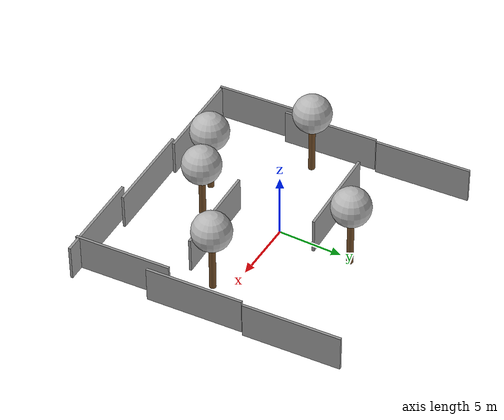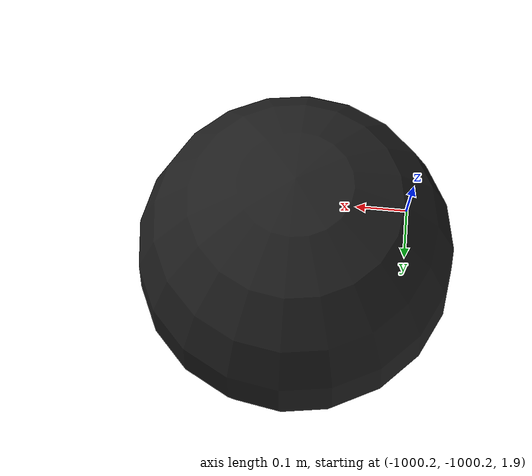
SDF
<sdf version="1.7">
 <world name="default">
  <plugin name="mrs_gazebo_static_transform_republisher_plugin" filename="libMrsGazeboCommonResources_StaticTransformRepublisher.so"/>
  <spherical_coordinates>
   <surface_model>EARTH_WGS84</surface_model>
   <latitude_deg>47.3977</latitude_deg>
   <longitude_deg>8.54559</longitude_deg>
   <elevation>0</elevation>
   <heading_deg>0</heading_deg>
  </spherical_coordinates>
  <physics name="default_physics" default="0" type="ode">
   <ode>
    <solver>
     <type>quick</type>
     <iters>10</iters>
     <sor>1.3</sor>
     <use_dynamic_moi_rescaling>0</use_dynamic_moi_rescaling>
    </solver>
    <constraints>
     <cfm>0</cfm>
     <erp>0.2</erp>
     <contact_max_correcting_vel>1000</contact_max_correcting_vel>
     <contact_surface_layer>0.001</contact_surface_layer>
    </constraints>
   </ode>
   <max_step_size>0.004</max_step_size>
   <real_time_factor>1</real_time_factor>
   <real_time_update_rate>250</real_time_update_rate>
  </physics>
  <scene><shadows>0</shadows><ambient>0.4 0.4 0.4 1</ambient><background>0.7 0.7 0.7 1</background></scene>
  <light name="sun" type="directional">
   <pose>0 0 1000 0.4 0.2 0</pose>
   <diffuse>1 1 1 1</diffuse>
   <specular>0.6 0.6 0.6 1</specular>
   <direction>0.1 0.1 -0.9</direction>
   <attenuation>
    <range>20</range>
    <constant>0.5</constant>
    <linear>0.01</linear>
    <quadratic>0.001</quadratic>
   </attenuation>
   <spot><inner_angle>0</inner_angle><outer_angle>0</outer_angle><falloff>0</falloff></spot>
  </light>
  <model name="the_void">
   <static>1</static>
   <link name="link">
    <pose>0 0 0.1 0 -0 0</pose>
    <visual name="the_void">
     <pose>0 0 2 0 -0 0</pose>
     <geometry><sphere><radius>0.25</radius></sphere></geometry>
     <material>
      <script><uri>file://media/materials/scripts/Gazebo.material</uri><name>Gazebo/Black</name></script>
     </material>
    </visual>
   </link>
   <pose>-1000 -1000 0 0 -0 0</pose>
  </model>
  <plugin name="mrs_gazebo_rviz_cam_synchronizer" filename="libMrsGazeboCommonResources_RvizCameraSynchronizer.so">
   <target_frame_id>gazebo_user_camera</target_frame_id>
   <world_origin_frame_id>uav1/gps_origin</world_origin_frame_id>
   <frame_to_follow>uav1</frame_to_follow>
  </plugin>
  <gravity>0 0 -9.8066</gravity>
  <magnetic_field>6e-06 2.3e-05 -4.2e-05</magnetic_field>
  <atmosphere type="adiabatic"/>
  <model name="grey_wall">
   <static>1</static>
   <link name="link">
    <pose>0 0 1.4 0 -0 0</pose>
    <collision name="collision"><geometry><box><size>7.5 0.2 2.8</size></box></geometry></collision>
    <visual name="visual">
     <cast_shadows>0</cast_shadows>
     <geometry><box><size>7.5 0.2 2.8</size></box></geometry>
     <material>
      <script>
       <uri>model://grey_wall/materials/scripts</uri>
       <uri>model://grey_wall/materials/textures</uri>
       <name>vrc/grey_wall</name>
      </script>
     </material>
    </visual>
   </link>
   <pose>10.3873 6.81267 0.006189 0 0 -1.51407</pose>
  </model>
  <model name="grey_wall_clone">
   <static>1</static>
   <link name="link">
    <pose>0 0 1.4 0 -0 0</pose>
    <collision name="collision"><geometry><box><size>7.5 0.2 2.8</size></box></geometry></collision>
    <visual name="visual">
     <cast_shadows>0</cast_shadows>
     <geometry><box><size>7.5 0.2 2.8</size></box></geometry>
     <material>
      <script>
       <uri>model://grey_wall/materials/scripts</uri>
       <uri>model://grey_wall/materials/textures</uri>
       <name>vrc/grey_wall</name>
      </script>
     </material>
    </visual>
   </link>
   <pose>10.5648 -0.861642 0.006189 0 0 -1.51407</pose>
  </model>
  <model name="grey_wall_clone_0">
   <static>1</static>
   <link name="link">
    <pose>0 0 1.4 0 -0 0</pose>
    <collision name="collision"><geometry><box><size>7.5 0.2 2.8</size></box></geometry></collision>
    <visual name="visual">
     <cast_shadows>0</cast_shadows>
     <geometry><box><size>7.5 0.2 2.8</size></box></geometry>
     <material>
      <script>
       <uri>model://grey_wall/materials/scripts</uri>
       <uri>model://grey_wall/materials/textures</uri>
       <name>vrc/grey_wall</name>
      </script>
     </material>
    </visual>
   </link>
   <pose>-9.82204 6.55075 0.006189 0 0 -1.51407</pose>
  </model>
  <model name="grey_wall_clone_1">
   <static>1</static>
   <link name="link">
    <pose>0 0 1.4 0 -0 0</pose>
    <collision name="collision"><geometry><box><size>7.5 0.2 2.8</size></box></geometry></collision>
    <visual name="visual">
     <cast_shadows>0</cast_shadows>
     <geometry><box><size>7.5 0.2 2.8</size></box></geometry>
     <material>
      <script>
       <uri>model://grey_wall/materials/scripts</uri>
       <uri>model://grey_wall/materials/textures</uri>
       <name>vrc/grey_wall</name>
      </script>
     </material>
    </visual>
   </link>
   <pose>-9.57551 -1.08129 0.006189 0 0 -1.51407</pose>
  </model>
  <model name="grey_wall_clone_2">
   <static>1</static>
   <link name="link">
    <pose>0 0 1.4 0 -0 0</pose>
    <collision name="collision"><geometry><box><size>7.5 0.2 2.8</size></box></geometry></collision>
    <visual name="visual">
     <cast_shadows>0</cast_shadows>
     <geometry><box><size>7.5 0.2 2.8</size></box></geometry>
     <material>
      <script>
       <uri>model://grey_wall/materials/scripts</uri>
       <uri>model://grey_wall/materials/textures</uri>
       <name>vrc/grey_wall</name>
      </script>
     </material>
    </visual>
   </link>
   <pose>-9.83703 -6.99259 0.006189 0 0 -1.51407</pose>
  </model>
  <model name="grey_wall_clone_3">
   <static>1</static>
   <link name="link">
    <pose>0 0 1.4 0 -0 0</pose>
    <collision name="collision"><geometry><box><size>7.5 0.2 2.8</size></box></geometry></collision>
    <visual name="visual">
     <cast_shadows>0</cast_shadows>
     <geometry><box><size>7.5 0.2 2.8</size></box></geometry>
     <material>
      <script>
       <uri>model://grey_wall/materials/scripts</uri>
       <uri>model://grey_wall/materials/textures</uri>
       <name>vrc/grey_wall</name>
      </script>
     </material>
    </visual>
   </link>
   <pose>10.1052 -7.03461 0.006189 0 0 -1.51407</pose>
  </model>
  <model name="grey_wall_clone_4">
   <static>1</static>
   <link name="link">
    <pose>0 0 1.4 0 -0 0</pose>
    <collision name="collision"><geometry><box><size>7.5 0.2 2.8</size></box></geometry></collision>
    <visual name="visual">
     <cast_shadows>0</cast_shadows>
     <geometry><box><size>7.5 0.2 2.8</size></box></geometry>
     <material>
      <script>
       <uri>model://grey_wall/materials/scripts</uri>
       <uri>model://grey_wall/materials/textures</uri>
       <name>vrc/grey_wall</name>
      </script>
     </material>
    </visual>
   </link>
   <pose>-5.70434 -10.3991 0.006189 -0.000123 0.009608 0.043913</pose>
  </model>
  <model name="grey_wall_clone_4_clone">
   <static>1</static>
   <link name="link">
    <pose>0 0 1.4 0 -0 0</pose>
    <collision name="collision"><geometry><box><size>7.5 0.2 2.8</size></box></geometry></collision>
    <visual name="visual">
     <cast_shadows>0</cast_shadows>
     <geometry><box><size>7.5 0.2 2.8</size></box></geometry>
     <material>
      <script>
       <uri>model://grey_wall/materials/scripts</uri>
       <uri>model://grey_wall/materials/textures</uri>
       <name>vrc/grey_wall</name>
      </script>
     </material>
    </visual>
   </link>
   <pose>1.35126 -10.369 0.006189 -0.000123 0.009608 0.043913</pose>
  </model>
  <model name="grey_wall_clone_4_clone_0">
   <static>1</static>
   <link name="link">
    <pose>0 0 1.4 0 -0 0</pose>
    <collision name="collision"><geometry><box><size>7.5 0.2 2.8</size></box></geometry></collision>
    <visual name="visual">
     <cast_shadows>0</cast_shadows>
     <geometry><box><size>7.5 0.2 2.8</size></box></geometry>
     <material>
      <script>
       <uri>model://grey_wall/materials/scripts</uri>
       <uri>model://grey_wall/materials/textures</uri>
       <name>vrc/grey_wall</name>
      </script>
     </material>
    </visual>
   </link>
   <pose>7.87916 -10.6341 0.006189 -0.000123 0.009608 0.043913</pose>
  </model>
  <model name="grey_wall_clone_4_clone_1">
   <static>1</static>
   <link name="link">
    <pose>0 0 1.4 0 -0 0</pose>
    <collision name="collision"><geometry><box><size>7.5 0.2 2.8</size></box></geometry></collision>
    <visual name="visual">
     <cast_shadows>0</cast_shadows>
     <geometry><box><size>7.5 0.2 2.8</size></box></geometry>
     <material>
      <script>
       <uri>model://grey_wall/materials/scripts</uri>
       <uri>model://grey_wall/materials/textures</uri>
       <name>vrc/grey_wall</name>
      </script>
     </material>
    </visual>
   </link>
   <pose>2.98825 -3.6967 0.006189 -0.000123 0.009608 0.043913</pose>
  </model>
  <model name="grey_wall_clone_4_clone_2">
   <static>1</static>
   <link name="link">
    <pose>0 0 1.4 0 -0 0</pose>
    <collision name="collision"><geometry><box><size>7.5 0.2 2.8</size></box></geometry></collision>
    <visual name="visual">
     <cast_shadows>0</cast_shadows>
     <geometry><box><size>7.5 0.2 2.8</size></box></geometry>
     <material>
      <script>
       <uri>model://grey_wall/materials/scripts</uri>
       <uri>model://grey_wall/materials/textures</uri>
       <name>vrc/grey_wall</name>
      </script>
     </material>
    </visual>
   </link>
   <pose>-3.17035 2.91631 0.006189 -0.000123 0.009608 0.043913</pose>
  </model>
  <model name="tree_simple">
   <static>1</static>
   <link name="link">
    <pose>0 0 0.1 0 -0 0</pose>
    <inertial>
     <mass>666</mass>
     <inertia>
      <ixx>0.0861167</ixx>
      <ixy>0</ixy>
      <ixz>0</ixz>
      <iyy>0.0861167</iyy>
      <iyz>0</iyz>
      <izz>0.0861167</izz>
     </inertia>
    </inertial>
    <collision name="collision_trunk">
     <pose>0 0 2 0 -0 0</pose>
     <geometry><cylinder><radius>0.25</radius><length>4</length></cylinder></geometry>
     <surface>
      <contact>
       <poissons_ratio>0.347</poissons_ratio>
       <elastic_modulus>8.8e+09</elastic_modulus>
       <ode><kp>100000</kp><kd>100</kd><max_vel>100</max_vel><min_depth>0.001</min_depth></ode>
      </contact>
      <friction>
       <torsional>
        <coefficient>1</coefficient>
        <use_patch_radius>0</use_patch_radius>
        <surface_radius>0.01</surface_radius>
       </torsional>
      </friction>
     </surface>
    </collision>
    <collision name="collision_treetop">
     <pose>0 0 5.2 0 -0 0</pose>
     <geometry><sphere><radius>1.5</radius></sphere></geometry>
     <surface>
      <contact>
       <poissons_ratio>0.347</poissons_ratio>
       <elastic_modulus>8.8e+09</elastic_modulus>
       <ode><kp>100000</kp><kd>100</kd><max_vel>100</max_vel><min_depth>0.001</min_depth></ode>
      </contact>
      <friction>
       <torsional>
        <coefficient>1</coefficient>
        <use_patch_radius>0</use_patch_radius>
        <surface_radius>0.01</surface_radius>
       </torsional>
      </friction>
     </surface>
    </collision>
    <visual name="trunk">
     <pose>0 0 2 0 -0 0</pose>
     <geometry><cylinder><radius>0.25</radius><length>4</length></cylinder></geometry>
     <material>
      <script>
       <uri>model://tree_simple/scripts</uri>
       <uri>model://tree_simple/materials/textures</uri>
       <name>TreeSimple/Trunk</name>
      </script>
     </material>
    </visual>
    <visual name="treetop">
     <pose>0 0 5.2 0 -0 0</pose>
     <geometry><sphere><radius>1.5</radius></sphere></geometry>
     <material>
      <script>
       <uri>model://tree_simple/scripts</uri>
       <uri>model://tree_simple/materials/textures</uri>
       <name>TreeSimple/Treetop</name>
      </script>
     </material>
    </visual>
   </link>
   <pose>1.66959 -5.54644 0 0 -0 0</pose>
  </model>
  <model name="tree_simple_0">
   <static>1</static>
   <link name="link">
    <pose>0 0 0.1 0 -0 0</pose>
    <inertial>
     <mass>666</mass>
     <inertia>
      <ixx>0.0861167</ixx>
      <ixy>0</ixy>
      <ixz>0</ixz>
      <iyy>0.0861167</iyy>
      <iyz>0</iyz>
      <izz>0.0861167</izz>
     </inertia>
    </inertial>
    <collision name="collision_trunk">
     <pose>0 0 2 0 -0 0</pose>
     <geometry><cylinder><radius>0.25</radius><length>4</length></cylinder></geometry>
     <surface>
      <contact>
       <poissons_ratio>0.347</poissons_ratio>
       <elastic_modulus>8.8e+09</elastic_modulus>
       <ode><kp>100000</kp><kd>100</kd><max_vel>100</max_vel><min_depth>0.001</min_depth></ode>
      </contact>
      <friction>
       <torsional>
        <coefficient>1</coefficient>
        <use_patch_radius>0</use_patch_radius>
        <surface_radius>0.01</surface_radius>
       </torsional>
      </friction>
     </surface>
    </collision>
    <collision name="collision_treetop">
     <pose>0 0 5.2 0 -0 0</pose>
     <geometry><sphere><radius>1.5</radius></sphere></geometry>
     <surface>
      <contact>
       <poissons_ratio>0.347</poissons_ratio>
       <elastic_modulus>8.8e+09</elastic_modulus>
       <ode><kp>100000</kp><kd>100</kd><max_vel>100</max_vel><min_depth>0.001</min_depth></ode>
      </contact>
      <friction>
       <torsional>
        <coefficient>1</coefficient>
        <use_patch_radius>0</use_patch_radius>
        <surface_radius>0.01</surface_radius>
       </torsional>
      </friction>
     </surface>
    </collision>
    <visual name="trunk">
     <pose>0 0 2 0 -0 0</pose>
     <geometry><cylinder><radius>0.25</radius><length>4</length></cylinder></geometry>
     <material>
      <script>
       <uri>model://tree_simple/scripts</uri>
       <uri>model://tree_simple/materials/textures</uri>
       <name>TreeSimple/Trunk</name>
      </script>
     </material>
    </visual>
    <visual name="treetop">
     <pose>0 0 5.2 0 -0 0</pose>
     <geometry><sphere><radius>1.5</radius></sphere></geometry>
     <material>
      <script>
       <uri>model://tree_simple/scripts</uri>
       <uri>model://tree_simple/materials/textures</uri>
       <name>TreeSimple/Treetop</name>
      </script>
     </material>
    </visual>
   </link>
   <pose>-1.87359 -6.99583 0 0 -0 0</pose>
  </model>
  <model name="tree_simple_1">
   <static>1</static>
   <link name="link">
    <pose>0 0 0.1 0 -0 0</pose>
    <inertial>
     <mass>666</mass>
     <inertia>
      <ixx>0.0861167</ixx>
      <ixy>0</ixy>
      <ixz>0</ixz>
      <iyy>0.0861167</iyy>
      <iyz>0</iyz>
      <izz>0.0861167</izz>
     </inertia>
    </inertial>
    <collision name="collision_trunk">
     <pose>0 0 2 0 -0 0</pose>
     <geometry><cylinder><radius>0.25</radius><length>4</length></cylinder></geometry>
     <surface>
      <contact>
       <poissons_ratio>0.347</poissons_ratio>
       <elastic_modulus>8.8e+09</elastic_modulus>
       <ode><kp>100000</kp><kd>100</kd><max_vel>100</max_vel><min_depth>0.001</min_depth></ode>
      </contact>
      <friction>
       <torsional>
        <coefficient>1</coefficient>
        <use_patch_radius>0</use_patch_radius>
        <surface_radius>0.01</surface_radius>
       </torsional>
      </friction>
     </surface>
    </collision>
    <collision name="collision_treetop">
     <pose>0 0 5.2 0 -0 0</pose>
     <geometry><sphere><radius>1.5</radius></sphere></geometry>
     <surface>
      <contact>
       <poissons_ratio>0.347</poissons_ratio>
       <elastic_modulus>8.8e+09</elastic_modulus>
       <ode><kp>100000</kp><kd>100</kd><max_vel>100</max_vel><min_depth>0.001</min_depth></ode>
      </contact>
      <friction>
       <torsional>
        <coefficient>1</coefficient>
        <use_patch_radius>0</use_patch_radius>
        <surface_radius>0.01</surface_radius>
       </torsional>
      </friction>
     </surface>
    </collision>
    <visual name="trunk">
     <pose>0 0 2 0 -0 0</pose>
     <geometry><cylinder><radius>0.25</radius><length>4</length></cylinder></geometry>
     <material>
      <script>
       <uri>model://tree_simple/scripts</uri>
       <uri>model://tree_simple/materials/textures</uri>
       <name>TreeSimple/Trunk</name>
      </script>
     </material>
    </visual>
    <visual name="treetop">
     <pose>0 0 5.2 0 -0 0</pose>
     <geometry><sphere><radius>1.5</radius></sphere></geometry>
     <material>
      <script>
       <uri>model://tree_simple/scripts</uri>
       <uri>model://tree_simple/materials/textures</uri>
       <name>TreeSimple/Treetop</name>
      </script>
     </material>
    </visual>
   </link>
   <pose>-7.41971 -1.49233 0 0 -0 0</pose>
  </model>
  <model name="tree_simple_2">
   <static>1</static>
   <link name="link">
    <pose>0 0 0.1 0 -0 0</pose>
    <inertial>
     <mass>666</mass>
     <inertia>
      <ixx>0.0861167</ixx>
      <ixy>0</ixy>
      <ixz>0</ixz>
      <iyy>0.0861167</iyy>
      <iyz>0</iyz>
      <izz>0.0861167</izz>
     </inertia>
    </inertial>
    <collision name="collision_trunk">
     <pose>0 0 2 0 -0 0</pose>
     <geometry><cylinder><radius>0.25</radius><length>4</length></cylinder></geometry>
     <surface>
      <contact>
       <poissons_ratio>0.347</poissons_ratio>
       <elastic_modulus>8.8e+09</elastic_modulus>
       <ode><kp>100000</kp><kd>100</kd><max_vel>100</max_vel><min_depth>0.001</min_depth></ode>
      </contact>
      <friction>
       <torsional>
        <coefficient>1</coefficient>
        <use_patch_radius>0</use_patch_radius>
        <surface_radius>0.01</surface_radius>
       </torsional>
      </friction>
     </surface>
    </collision>
    <collision name="collision_treetop">
     <pose>0 0 5.2 0 -0 0</pose>
     <geometry><sphere><radius>1.5</radius></sphere></geometry>
     <surface>
      <contact>
       <poissons_ratio>0.347</poissons_ratio>
       <elastic_modulus>8.8e+09</elastic_modulus>
       <ode><kp>100000</kp><kd>100</kd><max_vel>100</max_vel><min_depth>0.001</min_depth></ode>
      </contact>
      <friction>
       <torsional>
        <coefficient>1</coefficient>
        <use_patch_radius>0</use_patch_radius>
        <surface_radius>0.01</surface_radius>
       </torsional>
      </friction>
     </surface>
    </collision>
    <visual name="trunk">
     <pose>0 0 2 0 -0 0</pose>
     <geometry><cylinder><radius>0.25</radius><length>4</length></cylinder></geometry>
     <material>
      <script>
       <uri>model://tree_simple/scripts</uri>
       <uri>model://tree_simple/materials/textures</uri>
       <name>TreeSimple/Trunk</name>
      </script>
     </material>
    </visual>
    <visual name="treetop">
     <pose>0 0 5.2 0 -0 0</pose>
     <geometry><sphere><radius>1.5</radius></sphere></geometry>
     <material>
      <script>
       <uri>model://tree_simple/scripts</uri>
       <uri>model://tree_simple/materials/textures</uri>
       <name>TreeSimple/Treetop</name>
      </script>
     </material>
    </visual>
   </link>
   <pose>7.51623 -1.19329 0 0 -0 0</pose>
  </model>
  <model name="tree_simple_3">
   <static>1</static>
   <link name="link">
    <pose>0 0 0.1 0 -0 0</pose>
    <inertial>
     <mass>666</mass>
     <inertia>
      <ixx>0.0861167</ixx>
      <ixy>0</ixy>
      <ixz>0</ixz>
      <iyy>0.0861167</iyy>
      <iyz>0</iyz>
      <izz>0.0861167</izz>
     </inertia>
    </inertial>
    <collision name="collision_trunk">
     <pose>0 0 2 0 -0 0</pose>
     <geometry><cylinder><radius>0.25</radius><length>4</length></cylinder></geometry>
     <surface>
      <contact>
       <poissons_ratio>0.347</poissons_ratio>
       <elastic_modulus>8.8e+09</elastic_modulus>
       <ode><kp>100000</kp><kd>100</kd><max_vel>100</max_vel><min_depth>0.001</min_depth></ode>
      </contact>
      <friction>
       <torsional>
        <coefficient>1</coefficient>
        <use_patch_radius>0</use_patch_radius>
        <surface_radius>0.01</surface_radius>
       </torsional>
      </friction>
     </surface>
    </collision>
    <collision name="collision_treetop">
     <pose>0 0 5.2 0 -0 0</pose>
     <geometry><sphere><radius>1.5</radius></sphere></geometry>
     <surface>
      <contact>
       <poissons_ratio>0.347</poissons_ratio>
       <elastic_modulus>8.8e+09</elastic_modulus>
       <ode><kp>100000</kp><kd>100</kd><max_vel>100</max_vel><min_depth>0.001</min_depth></ode>
      </contact>
      <friction>
       <torsional>
        <coefficient>1</coefficient>
        <use_patch_radius>0</use_patch_radius>
        <surface_radius>0.01</surface_radius>
       </torsional>
      </friction>
     </surface>
    </collision>
    <visual name="trunk">
     <pose>0 0 2 0 -0 0</pose>
     <geometry><cylinder><radius>0.25</radius><length>4</length></cylinder></geometry>
     <material>
      <script>
       <uri>model://tree_simple/scripts</uri>
       <uri>model://tree_simple/materials/textures</uri>
       <name>TreeSimple/Trunk</name>
      </script>
     </material>
    </visual>
    <visual name="treetop">
     <pose>0 0 5.2 0 -0 0</pose>
     <geometry><sphere><radius>1.5</radius></sphere></geometry>
     <material>
      <script>
       <uri>model://tree_simple/scripts</uri>
       <uri>model://tree_simple/materials/textures</uri>
       <name>TreeSimple/Treetop</name>
      </script>
     </material>
    </visual>
   </link>
   <pose>0.41183 6.00387 0 0 -0 0</pose>
  </model>
 </world>
</sdf>
